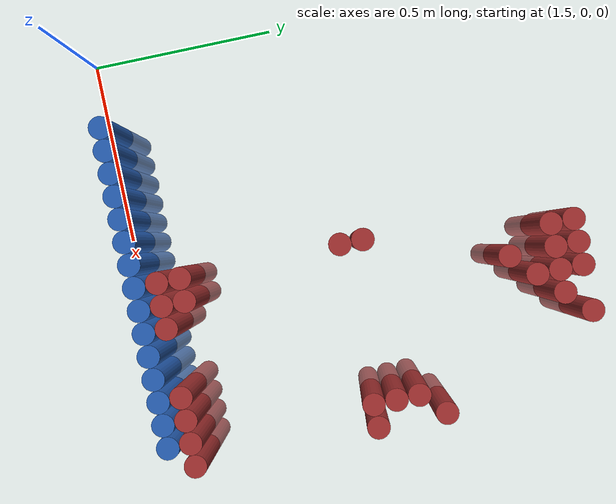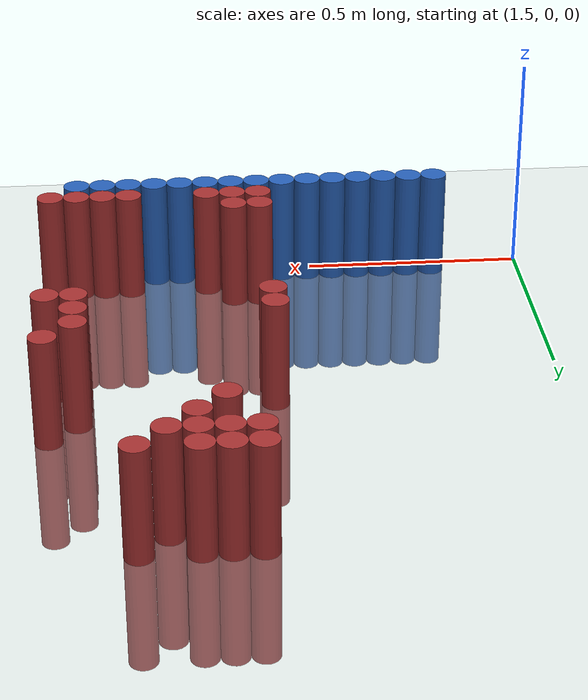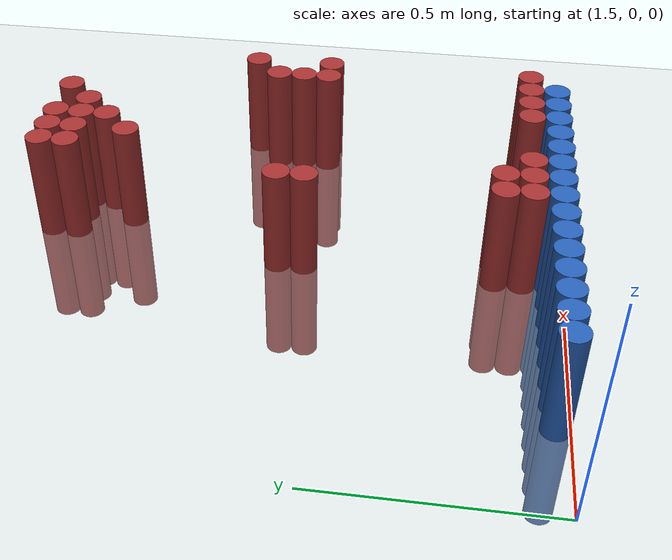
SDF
<sdf version="1.6">
 <world name="default">
  <model name="ground_plane">
   <static>1</static>
   <link name="link">
    <collision name="collision">
     <geometry><plane><normal>0 0 1</normal><size>100 100</size></plane></geometry>
     <surface><friction><ode><mu>100</mu><mu2>50</mu2></ode></friction></surface>
    </collision>
    <visual name="visual">
     <cast_shadows>0</cast_shadows>
     <geometry><plane><normal>0 0 1</normal><size>100 100</size></plane></geometry>
     <material>
      <script><uri>file://media/materials/scripts/gazebo.material</uri><name>Gazebo/Grey</name></script>
     </material>
    </visual>
   </link>
  </model>
  <model name="unit_cylinder_83">
   <static>1</static>
   <pose>1.710000 0.030000 0.000000 0.000000 0.000000 0.000000</pose>
   <link name="link">
    <inertial>
     <mass>1</mass>
     <inertia><ixx>0.145833</ixx><ixy>0</ixy><ixz>0</ixz><iyy>0.145833</iyy><iyz>0</iyz><izz>0.125</izz></inertia>
    </inertial>
    <collision name="collision">
     <geometry><cylinder><radius>0.030000</radius><length>0.5</length></cylinder></geometry>
    </collision>
    <visual name="visual">
     <geometry><cylinder><radius>0.030000</radius><length>0.5</length></cylinder></geometry>
     <material>
      <ambient>0.152000 0.379000 0.720000 1</ambient>
      <diffuse>0.152000 0.379000 0.720000 1</diffuse>
     </material>
     <material>
      <script><name>Gazebo/Grey</name><uri>file://media/materials/scripts/gazebo.material</uri></script>
     </material>
    </visual>
   </link>
  </model>
  <model name="unit_cylinder_85">
   <static>1</static>
   <pose>1.770000 0.030000 0.000000 0.000000 0.000000 0.000000</pose>
   <link name="link">
    <inertial>
     <mass>1</mass>
     <inertia><ixx>0.145833</ixx><ixy>0</ixy><ixz>0</ixz><iyy>0.145833</iyy><iyz>0</iyz><izz>0.125</izz></inertia>
    </inertial>
    <collision name="collision">
     <geometry><cylinder><radius>0.030000</radius><length>0.5</length></cylinder></geometry>
    </collision>
    <visual name="visual">
     <geometry><cylinder><radius>0.030000</radius><length>0.5</length></cylinder></geometry>
     <material>
      <ambient>0.152000 0.379000 0.720000 1</ambient>
      <diffuse>0.152000 0.379000 0.720000 1</diffuse>
     </material>
     <material>
      <script><name>Gazebo/Grey</name><uri>file://media/materials/scripts/gazebo.material</uri></script>
     </material>
    </visual>
   </link>
  </model>
  <model name="unit_cylinder_87">
   <static>1</static>
   <pose>1.830000 0.030000 0.000000 0.000000 0.000000 0.000000</pose>
   <link name="link">
    <inertial>
     <mass>1</mass>
     <inertia><ixx>0.145833</ixx><ixy>0</ixy><ixz>0</ixz><iyy>0.145833</iyy><iyz>0</iyz><izz>0.125</izz></inertia>
    </inertial>
    <collision name="collision">
     <geometry><cylinder><radius>0.030000</radius><length>0.5</length></cylinder></geometry>
    </collision>
    <visual name="visual">
     <geometry><cylinder><radius>0.030000</radius><length>0.5</length></cylinder></geometry>
     <material>
      <ambient>0.152000 0.379000 0.720000 1</ambient>
      <diffuse>0.152000 0.379000 0.720000 1</diffuse>
     </material>
     <material>
      <script><name>Gazebo/Grey</name><uri>file://media/materials/scripts/gazebo.material</uri></script>
     </material>
    </visual>
   </link>
  </model>
  <model name="unit_cylinder_89">
   <static>1</static>
   <pose>1.890000 0.030000 0.000000 0.000000 0.000000 0.000000</pose>
   <link name="link">
    <inertial>
     <mass>1</mass>
     <inertia><ixx>0.145833</ixx><ixy>0</ixy><ixz>0</ixz><iyy>0.145833</iyy><iyz>0</iyz><izz>0.125</izz></inertia>
    </inertial>
    <collision name="collision">
     <geometry><cylinder><radius>0.030000</radius><length>0.5</length></cylinder></geometry>
    </collision>
    <visual name="visual">
     <geometry><cylinder><radius>0.030000</radius><length>0.5</length></cylinder></geometry>
     <material>
      <ambient>0.152000 0.379000 0.720000 1</ambient>
      <diffuse>0.152000 0.379000 0.720000 1</diffuse>
     </material>
     <material>
      <script><name>Gazebo/Grey</name><uri>file://media/materials/scripts/gazebo.material</uri></script>
     </material>
    </visual>
   </link>
  </model>
  <model name="unit_cylinder_91">
   <static>1</static>
   <pose>1.950000 0.030000 0.000000 0.000000 0.000000 0.000000</pose>
   <link name="link">
    <inertial>
     <mass>1</mass>
     <inertia><ixx>0.145833</ixx><ixy>0</ixy><ixz>0</ixz><iyy>0.145833</iyy><iyz>0</iyz><izz>0.125</izz></inertia>
    </inertial>
    <collision name="collision">
     <geometry><cylinder><radius>0.030000</radius><length>0.5</length></cylinder></geometry>
    </collision>
    <visual name="visual">
     <geometry><cylinder><radius>0.030000</radius><length>0.5</length></cylinder></geometry>
     <material>
      <ambient>0.152000 0.379000 0.720000 1</ambient>
      <diffuse>0.152000 0.379000 0.720000 1</diffuse>
     </material>
     <material>
      <script><name>Gazebo/Grey</name><uri>file://media/materials/scripts/gazebo.material</uri></script>
     </material>
    </visual>
   </link>
  </model>
  <model name="unit_cylinder_93">
   <static>1</static>
   <pose>2.010000 0.030000 0.000000 0.000000 0.000000 0.000000</pose>
   <link name="link">
    <inertial>
     <mass>1</mass>
     <inertia><ixx>0.145833</ixx><ixy>0</ixy><ixz>0</ixz><iyy>0.145833</iyy><iyz>0</iyz><izz>0.125</izz></inertia>
    </inertial>
    <collision name="collision">
     <geometry><cylinder><radius>0.030000</radius><length>0.5</length></cylinder></geometry>
    </collision>
    <visual name="visual">
     <geometry><cylinder><radius>0.030000</radius><length>0.5</length></cylinder></geometry>
     <material>
      <ambient>0.152000 0.379000 0.720000 1</ambient>
      <diffuse>0.152000 0.379000 0.720000 1</diffuse>
     </material>
     <material>
      <script><name>Gazebo/Grey</name><uri>file://media/materials/scripts/gazebo.material</uri></script>
     </material>
    </visual>
   </link>
  </model>
  <model name="unit_cylinder_216">
   <static>1</static>
   <pose>2.190000 1.170000 0.000000 0.000000 0.000000 0.000000</pose>
   <link name="link">
    <inertial>
     <mass>1</mass>
     <inertia><ixx>0.145833</ixx><ixy>0</ixy><ixz>0</ixz><iyy>0.145833</iyy><iyz>0</iyz><izz>0.125</izz></inertia>
    </inertial>
    <collision name="collision">
     <geometry><cylinder><radius>0.030000</radius><length>0.5</length></cylinder></geometry>
    </collision>
    <visual name="visual">
     <geometry><cylinder><radius>0.030000</radius><length>0.5</length></cylinder></geometry>
     <material>
      <ambient>0.648000 0.192000 0.192000 1</ambient>
      <diffuse>0.648000 0.192000 0.192000 1</diffuse>
     </material>
     <material>
      <script><name>Gazebo/Grey</name><uri>file://media/materials/scripts/gazebo.material</uri></script>
     </material>
    </visual>
   </link>
  </model>
  <model name="unit_cylinder_217">
   <static>1</static>
   <pose>2.250000 1.170000 0.000000 0.000000 0.000000 0.000000</pose>
   <link name="link">
    <inertial>
     <mass>1</mass>
     <inertia><ixx>0.145833</ixx><ixy>0</ixy><ixz>0</ixz><iyy>0.145833</iyy><iyz>0</iyz><izz>0.125</izz></inertia>
    </inertial>
    <collision name="collision">
     <geometry><cylinder><radius>0.030000</radius><length>0.5</length></cylinder></geometry>
    </collision>
    <visual name="visual">
     <geometry><cylinder><radius>0.030000</radius><length>0.5</length></cylinder></geometry>
     <material>
      <ambient>0.648000 0.192000 0.192000 1</ambient>
      <diffuse>0.648000 0.192000 0.192000 1</diffuse>
     </material>
     <material>
      <script><name>Gazebo/Grey</name><uri>file://media/materials/scripts/gazebo.material</uri></script>
     </material>
    </visual>
   </link>
  </model>
  <model name="unit_cylinder_218">
   <static>1</static>
   <pose>2.310000 1.170000 0.000000 0.000000 0.000000 0.000000</pose>
   <link name="link">
    <inertial>
     <mass>1</mass>
     <inertia><ixx>0.145833</ixx><ixy>0</ixy><ixz>0</ixz><iyy>0.145833</iyy><iyz>0</iyz><izz>0.125</izz></inertia>
    </inertial>
    <collision name="collision">
     <geometry><cylinder><radius>0.030000</radius><length>0.5</length></cylinder></geometry>
    </collision>
    <visual name="visual">
     <geometry><cylinder><radius>0.030000</radius><length>0.5</length></cylinder></geometry>
     <material>
      <ambient>0.648000 0.192000 0.192000 1</ambient>
      <diffuse>0.648000 0.192000 0.192000 1</diffuse>
     </material>
     <material>
      <script><name>Gazebo/Grey</name><uri>file://media/materials/scripts/gazebo.material</uri></script>
     </material>
    </visual>
   </link>
  </model>
  <model name="unit_cylinder_219">
   <static>1</static>
   <pose>2.430000 1.170000 0.000000 0.000000 0.000000 0.000000</pose>
   <link name="link">
    <inertial>
     <mass>1</mass>
     <inertia><ixx>0.145833</ixx><ixy>0</ixy><ixz>0</ixz><iyy>0.145833</iyy><iyz>0</iyz><izz>0.125</izz></inertia>
    </inertial>
    <collision name="collision">
     <geometry><cylinder><radius>0.030000</radius><length>0.5</length></cylinder></geometry>
    </collision>
    <visual name="visual">
     <geometry><cylinder><radius>0.030000</radius><length>0.5</length></cylinder></geometry>
     <material>
      <ambient>0.648000 0.192000 0.192000 1</ambient>
      <diffuse>0.648000 0.192000 0.192000 1</diffuse>
     </material>
     <material>
      <script><name>Gazebo/Grey</name><uri>file://media/materials/scripts/gazebo.material</uri></script>
     </material>
    </visual>
   </link>
  </model>
  <model name="unit_cylinder_223">
   <static>1</static>
   <pose>2.190000 1.110000 0.000000 0.000000 0.000000 0.000000</pose>
   <link name="link">
    <inertial>
     <mass>1</mass>
     <inertia><ixx>0.145833</ixx><ixy>0</ixy><ixz>0</ixz><iyy>0.145833</iyy><iyz>0</iyz><izz>0.125</izz></inertia>
    </inertial>
    <collision name="collision">
     <geometry><cylinder><radius>0.030000</radius><length>0.5</length></cylinder></geometry>
    </collision>
    <visual name="visual">
     <geometry><cylinder><radius>0.030000</radius><length>0.5</length></cylinder></geometry>
     <material>
      <ambient>0.648000 0.192000 0.192000 1</ambient>
      <diffuse>0.648000 0.192000 0.192000 1</diffuse>
     </material>
     <material>
      <script><name>Gazebo/Grey</name><uri>file://media/materials/scripts/gazebo.material</uri></script>
     </material>
    </visual>
   </link>
  </model>
  <model name="unit_cylinder_224">
   <static>1</static>
   <pose>2.250000 1.110000 0.000000 0.000000 0.000000 0.000000</pose>
   <link name="link">
    <inertial>
     <mass>1</mass>
     <inertia><ixx>0.145833</ixx><ixy>0</ixy><ixz>0</ixz><iyy>0.145833</iyy><iyz>0</iyz><izz>0.125</izz></inertia>
    </inertial>
    <collision name="collision">
     <geometry><cylinder><radius>0.030000</radius><length>0.5</length></cylinder></geometry>
    </collision>
    <visual name="visual">
     <geometry><cylinder><radius>0.030000</radius><length>0.5</length></cylinder></geometry>
     <material>
      <ambient>0.648000 0.192000 0.192000 1</ambient>
      <diffuse>0.648000 0.192000 0.192000 1</diffuse>
     </material>
     <material>
      <script><name>Gazebo/Grey</name><uri>file://media/materials/scripts/gazebo.material</uri></script>
     </material>
    </visual>
   </link>
  </model>
  <model name="unit_cylinder_225">
   <static>1</static>
   <pose>2.310000 1.110000 0.000000 0.000000 0.000000 0.000000</pose>
   <link name="link">
    <inertial>
     <mass>1</mass>
     <inertia><ixx>0.145833</ixx><ixy>0</ixy><ixz>0</ixz><iyy>0.145833</iyy><iyz>0</iyz><izz>0.125</izz></inertia>
    </inertial>
    <collision name="collision">
     <geometry><cylinder><radius>0.030000</radius><length>0.5</length></cylinder></geometry>
    </collision>
    <visual name="visual">
     <geometry><cylinder><radius>0.030000</radius><length>0.5</length></cylinder></geometry>
     <material>
      <ambient>0.648000 0.192000 0.192000 1</ambient>
      <diffuse>0.648000 0.192000 0.192000 1</diffuse>
     </material>
     <material>
      <script><name>Gazebo/Grey</name><uri>file://media/materials/scripts/gazebo.material</uri></script>
     </material>
    </visual>
   </link>
  </model>
  <model name="unit_cylinder_226">
   <static>1</static>
   <pose>2.370000 1.110000 0.000000 0.000000 0.000000 0.000000</pose>
   <link name="link">
    <inertial>
     <mass>1</mass>
     <inertia><ixx>0.145833</ixx><ixy>0</ixy><ixz>0</ixz><iyy>0.145833</iyy><iyz>0</iyz><izz>0.125</izz></inertia>
    </inertial>
    <collision name="collision">
     <geometry><cylinder><radius>0.030000</radius><length>0.5</length></cylinder></geometry>
    </collision>
    <visual name="visual">
     <geometry><cylinder><radius>0.030000</radius><length>0.5</length></cylinder></geometry>
     <material>
      <ambient>0.648000 0.192000 0.192000 1</ambient>
      <diffuse>0.648000 0.192000 0.192000 1</diffuse>
     </material>
     <material>
      <script><name>Gazebo/Grey</name><uri>file://media/materials/scripts/gazebo.material</uri></script>
     </material>
    </visual>
   </link>
  </model>
  <model name="unit_cylinder_227">
   <static>1</static>
   <pose>2.310000 1.050000 0.000000 0.000000 0.000000 0.000000</pose>
   <link name="link">
    <inertial>
     <mass>1</mass>
     <inertia><ixx>0.145833</ixx><ixy>0</ixy><ixz>0</ixz><iyy>0.145833</iyy><iyz>0</iyz><izz>0.125</izz></inertia>
    </inertial>
    <collision name="collision">
     <geometry><cylinder><radius>0.030000</radius><length>0.5</length></cylinder></geometry>
    </collision>
    <visual name="visual">
     <geometry><cylinder><radius>0.030000</radius><length>0.5</length></cylinder></geometry>
     <material>
      <ambient>0.648000 0.192000 0.192000 1</ambient>
      <diffuse>0.648000 0.192000 0.192000 1</diffuse>
     </material>
     <material>
      <script><name>Gazebo/Grey</name><uri>file://media/materials/scripts/gazebo.material</uri></script>
     </material>
    </visual>
   </link>
  </model>
  <model name="unit_cylinder_230">
   <static>1</static>
   <pose>2.250000 0.990000 0.000000 0.000000 0.000000 0.000000</pose>
   <link name="link">
    <inertial>
     <mass>1</mass>
     <inertia><ixx>0.145833</ixx><ixy>0</ixy><ixz>0</ixz><iyy>0.145833</iyy><iyz>0</iyz><izz>0.125</izz></inertia>
    </inertial>
    <collision name="collision">
     <geometry><cylinder><radius>0.030000</radius><length>0.5</length></cylinder></geometry>
    </collision>
    <visual name="visual">
     <geometry><cylinder><radius>0.030000</radius><length>0.5</length></cylinder></geometry>
     <material>
      <ambient>0.648000 0.192000 0.192000 1</ambient>
      <diffuse>0.648000 0.192000 0.192000 1</diffuse>
     </material>
     <material>
      <script><name>Gazebo/Grey</name><uri>file://media/materials/scripts/gazebo.material</uri></script>
     </material>
    </visual>
   </link>
  </model>
  <model name="unit_cylinder_239">
   <static>1</static>
   <pose>2.610000 0.750000 0.000000 0.000000 0.000000 0.000000</pose>
   <link name="link">
    <inertial>
     <mass>1</mass>
     <inertia><ixx>0.145833</ixx><ixy>0</ixy><ixz>0</ixz><iyy>0.145833</iyy><iyz>0</iyz><izz>0.125</izz></inertia>
    </inertial>
    <collision name="collision">
     <geometry><cylinder><radius>0.030000</radius><length>0.5</length></cylinder></geometry>
    </collision>
    <visual name="visual">
     <geometry><cylinder><radius>0.030000</radius><length>0.5</length></cylinder></geometry>
     <material>
      <ambient>0.648000 0.192000 0.192000 1</ambient>
      <diffuse>0.648000 0.192000 0.192000 1</diffuse>
     </material>
     <material>
      <script><name>Gazebo/Grey</name><uri>file://media/materials/scripts/gazebo.material</uri></script>
     </material>
    </visual>
   </link>
  </model>
  <model name="unit_cylinder_241">
   <static>1</static>
   <pose>2.550000 0.690000 0.000000 0.000000 0.000000 0.000000</pose>
   <link name="link">
    <inertial>
     <mass>1</mass>
     <inertia><ixx>0.145833</ixx><ixy>0</ixy><ixz>0</ixz><iyy>0.145833</iyy><iyz>0</iyz><izz>0.125</izz></inertia>
    </inertial>
    <collision name="collision">
     <geometry><cylinder><radius>0.030000</radius><length>0.5</length></cylinder></geometry>
    </collision>
    <visual name="visual">
     <geometry><cylinder><radius>0.030000</radius><length>0.5</length></cylinder></geometry>
     <material>
      <ambient>0.648000 0.192000 0.192000 1</ambient>
      <diffuse>0.648000 0.192000 0.192000 1</diffuse>
     </material>
     <material>
      <script><name>Gazebo/Grey</name><uri>file://media/materials/scripts/gazebo.material</uri></script>
     </material>
    </visual>
   </link>
  </model>
  <model name="unit_cylinder_242">
   <static>1</static>
   <pose>2.130000 0.630000 0.000000 0.000000 0.000000 0.000000</pose>
   <link name="link">
    <inertial>
     <mass>1</mass>
     <inertia><ixx>0.145833</ixx><ixy>0</ixy><ixz>0</ixz><iyy>0.145833</iyy><iyz>0</iyz><izz>0.125</izz></inertia>
    </inertial>
    <collision name="collision">
     <geometry><cylinder><radius>0.030000</radius><length>0.5</length></cylinder></geometry>
    </collision>
    <visual name="visual">
     <geometry><cylinder><radius>0.030000</radius><length>0.5</length></cylinder></geometry>
     <material>
      <ambient>0.648000 0.192000 0.192000 1</ambient>
      <diffuse>0.648000 0.192000 0.192000 1</diffuse>
     </material>
     <material>
      <script><name>Gazebo/Grey</name><uri>file://media/materials/scripts/gazebo.material</uri></script>
     </material>
    </visual>
   </link>
  </model>
  <model name="unit_cylinder_243">
   <static>1</static>
   <pose>2.550000 0.630000 0.000000 0.000000 0.000000 0.000000</pose>
   <link name="link">
    <inertial>
     <mass>1</mass>
     <inertia><ixx>0.145833</ixx><ixy>0</ixy><ixz>0</ixz><iyy>0.145833</iyy><iyz>0</iyz><izz>0.125</izz></inertia>
    </inertial>
    <collision name="collision">
     <geometry><cylinder><radius>0.030000</radius><length>0.5</length></cylinder></geometry>
    </collision>
    <visual name="visual">
     <geometry><cylinder><radius>0.030000</radius><length>0.5</length></cylinder></geometry>
     <material>
      <ambient>0.648000 0.192000 0.192000 1</ambient>
      <diffuse>0.648000 0.192000 0.192000 1</diffuse>
     </material>
     <material>
      <script><name>Gazebo/Grey</name><uri>file://media/materials/scripts/gazebo.material</uri></script>
     </material>
    </visual>
   </link>
  </model>
  <model name="unit_cylinder_244">
   <static>1</static>
   <pose>2.130000 0.570000 0.000000 0.000000 0.000000 0.000000</pose>
   <link name="link">
    <inertial>
     <mass>1</mass>
     <inertia><ixx>0.145833</ixx><ixy>0</ixy><ixz>0</ixz><iyy>0.145833</iyy><iyz>0</iyz><izz>0.125</izz></inertia>
    </inertial>
    <collision name="collision">
     <geometry><cylinder><radius>0.030000</radius><length>0.5</length></cylinder></geometry>
    </collision>
    <visual name="visual">
     <geometry><cylinder><radius>0.030000</radius><length>0.5</length></cylinder></geometry>
     <material>
      <ambient>0.648000 0.192000 0.192000 1</ambient>
      <diffuse>0.648000 0.192000 0.192000 1</diffuse>
     </material>
     <material>
      <script><name>Gazebo/Grey</name><uri>file://media/materials/scripts/gazebo.material</uri></script>
     </material>
    </visual>
   </link>
  </model>
  <model name="unit_cylinder_245">
   <static>1</static>
   <pose>2.550000 0.570000 0.000000 0.000000 0.000000 0.000000</pose>
   <link name="link">
    <inertial>
     <mass>1</mass>
     <inertia><ixx>0.145833</ixx><ixy>0</ixy><ixz>0</ixz><iyy>0.145833</iyy><iyz>0</iyz><izz>0.125</izz></inertia>
    </inertial>
    <collision name="collision">
     <geometry><cylinder><radius>0.030000</radius><length>0.5</length></cylinder></geometry>
    </collision>
    <visual name="visual">
     <geometry><cylinder><radius>0.030000</radius><length>0.5</length></cylinder></geometry>
     <material>
      <ambient>0.648000 0.192000 0.192000 1</ambient>
      <diffuse>0.648000 0.192000 0.192000 1</diffuse>
     </material>
     <material>
      <script><name>Gazebo/Grey</name><uri>file://media/materials/scripts/gazebo.material</uri></script>
     </material>
    </visual>
   </link>
  </model>
  <model name="unit_cylinder_246">
   <static>1</static>
   <pose>2.610000 0.570000 0.000000 0.000000 0.000000 0.000000</pose>
   <link name="link">
    <inertial>
     <mass>1</mass>
     <inertia><ixx>0.145833</ixx><ixy>0</ixy><ixz>0</ixz><iyy>0.145833</iyy><iyz>0</iyz><izz>0.125</izz></inertia>
    </inertial>
    <collision name="collision">
     <geometry><cylinder><radius>0.030000</radius><length>0.5</length></cylinder></geometry>
    </collision>
    <visual name="visual">
     <geometry><cylinder><radius>0.030000</radius><length>0.5</length></cylinder></geometry>
     <material>
      <ambient>0.648000 0.192000 0.192000 1</ambient>
      <diffuse>0.648000 0.192000 0.192000 1</diffuse>
     </material>
     <material>
      <script><name>Gazebo/Grey</name><uri>file://media/materials/scripts/gazebo.material</uri></script>
     </material>
    </visual>
   </link>
  </model>
  <model name="unit_cylinder_270">
   <static>1</static>
   <pose>2.130000 0.150000 0.000000 0.000000 0.000000 0.000000</pose>
   <link name="link">
    <inertial>
     <mass>1</mass>
     <inertia><ixx>0.145833</ixx><ixy>0</ixy><ixz>0</ixz><iyy>0.145833</iyy><iyz>0</iyz><izz>0.125</izz></inertia>
    </inertial>
    <collision name="collision">
     <geometry><cylinder><radius>0.030000</radius><length>0.5</length></cylinder></geometry>
    </collision>
    <visual name="visual">
     <geometry><cylinder><radius>0.030000</radius><length>0.5</length></cylinder></geometry>
     <material>
      <ambient>0.648000 0.192000 0.192000 1</ambient>
      <diffuse>0.648000 0.192000 0.192000 1</diffuse>
     </material>
     <material>
      <script><name>Gazebo/Grey</name><uri>file://media/materials/scripts/gazebo.material</uri></script>
     </material>
    </visual>
   </link>
  </model>
  <model name="unit_cylinder_271">
   <static>1</static>
   <pose>2.190000 0.150000 0.000000 0.000000 0.000000 0.000000</pose>
   <link name="link">
    <inertial>
     <mass>1</mass>
     <inertia><ixx>0.145833</ixx><ixy>0</ixy><ixz>0</ixz><iyy>0.145833</iyy><iyz>0</iyz><izz>0.125</izz></inertia>
    </inertial>
    <collision name="collision">
     <geometry><cylinder><radius>0.030000</radius><length>0.5</length></cylinder></geometry>
    </collision>
    <visual name="visual">
     <geometry><cylinder><radius>0.030000</radius><length>0.5</length></cylinder></geometry>
     <material>
      <ambient>0.648000 0.192000 0.192000 1</ambient>
      <diffuse>0.648000 0.192000 0.192000 1</diffuse>
     </material>
     <material>
      <script><name>Gazebo/Grey</name><uri>file://media/materials/scripts/gazebo.material</uri></script>
     </material>
    </visual>
   </link>
  </model>
  <model name="unit_cylinder_282">
   <static>1</static>
   <pose>2.130000 0.090000 0.000000 0.000000 0.000000 0.000000</pose>
   <link name="link">
    <inertial>
     <mass>1</mass>
     <inertia><ixx>0.145833</ixx><ixy>0</ixy><ixz>0</ixz><iyy>0.145833</iyy><iyz>0</iyz><izz>0.125</izz></inertia>
    </inertial>
    <collision name="collision">
     <geometry><cylinder><radius>0.030000</radius><length>0.5</length></cylinder></geometry>
    </collision>
    <visual name="visual">
     <geometry><cylinder><radius>0.030000</radius><length>0.5</length></cylinder></geometry>
     <material>
      <ambient>0.648000 0.192000 0.192000 1</ambient>
      <diffuse>0.648000 0.192000 0.192000 1</diffuse>
     </material>
     <material>
      <script><name>Gazebo/Grey</name><uri>file://media/materials/scripts/gazebo.material</uri></script>
     </material>
    </visual>
   </link>
  </model>
  <model name="unit_cylinder_283">
   <static>1</static>
   <pose>2.190000 0.090000 0.000000 0.000000 0.000000 0.000000</pose>
   <link name="link">
    <inertial>
     <mass>1</mass>
     <inertia><ixx>0.145833</ixx><ixy>0</ixy><ixz>0</ixz><iyy>0.145833</iyy><iyz>0</iyz><izz>0.125</izz></inertia>
    </inertial>
    <collision name="collision">
     <geometry><cylinder><radius>0.030000</radius><length>0.5</length></cylinder></geometry>
    </collision>
    <visual name="visual">
     <geometry><cylinder><radius>0.030000</radius><length>0.5</length></cylinder></geometry>
     <material>
      <ambient>0.648000 0.192000 0.192000 1</ambient>
      <diffuse>0.648000 0.192000 0.192000 1</diffuse>
     </material>
     <material>
      <script><name>Gazebo/Grey</name><uri>file://media/materials/scripts/gazebo.material</uri></script>
     </material>
    </visual>
   </link>
  </model>
  <model name="unit_cylinder_284">
   <static>1</static>
   <pose>2.250000 0.090000 0.000000 0.000000 0.000000 0.000000</pose>
   <link name="link">
    <inertial>
     <mass>1</mass>
     <inertia><ixx>0.145833</ixx><ixy>0</ixy><ixz>0</ixz><iyy>0.145833</iyy><iyz>0</iyz><izz>0.125</izz></inertia>
    </inertial>
    <collision name="collision">
     <geometry><cylinder><radius>0.030000</radius><length>0.5</length></cylinder></geometry>
    </collision>
    <visual name="visual">
     <geometry><cylinder><radius>0.030000</radius><length>0.5</length></cylinder></geometry>
     <material>
      <ambient>0.648000 0.192000 0.192000 1</ambient>
      <diffuse>0.648000 0.192000 0.192000 1</diffuse>
     </material>
     <material>
      <script><name>Gazebo/Grey</name><uri>file://media/materials/scripts/gazebo.material</uri></script>
     </material>
    </visual>
   </link>
  </model>
  <model name="unit_cylinder_285">
   <static>1</static>
   <pose>2.430000 0.090000 0.000000 0.000000 0.000000 0.000000</pose>
   <link name="link">
    <inertial>
     <mass>1</mass>
     <inertia><ixx>0.145833</ixx><ixy>0</ixy><ixz>0</ixz><iyy>0.145833</iyy><iyz>0</iyz><izz>0.125</izz></inertia>
    </inertial>
    <collision name="collision">
     <geometry><cylinder><radius>0.030000</radius><length>0.5</length></cylinder></geometry>
    </collision>
    <visual name="visual">
     <geometry><cylinder><radius>0.030000</radius><length>0.5</length></cylinder></geometry>
     <material>
      <ambient>0.648000 0.192000 0.192000 1</ambient>
      <diffuse>0.648000 0.192000 0.192000 1</diffuse>
     </material>
     <material>
      <script><name>Gazebo/Grey</name><uri>file://media/materials/scripts/gazebo.material</uri></script>
     </material>
    </visual>
   </link>
  </model>
  <model name="unit_cylinder_286">
   <static>1</static>
   <pose>2.490000 0.090000 0.000000 0.000000 0.000000 0.000000</pose>
   <link name="link">
    <inertial>
     <mass>1</mass>
     <inertia><ixx>0.145833</ixx><ixy>0</ixy><ixz>0</ixz><iyy>0.145833</iyy><iyz>0</iyz><izz>0.125</izz></inertia>
    </inertial>
    <collision name="collision">
     <geometry><cylinder><radius>0.030000</radius><length>0.5</length></cylinder></geometry>
    </collision>
    <visual name="visual">
     <geometry><cylinder><radius>0.030000</radius><length>0.5</length></cylinder></geometry>
     <material>
      <ambient>0.648000 0.192000 0.192000 1</ambient>
      <diffuse>0.648000 0.192000 0.192000 1</diffuse>
     </material>
     <material>
      <script><name>Gazebo/Grey</name><uri>file://media/materials/scripts/gazebo.material</uri></script>
     </material>
    </visual>
   </link>
  </model>
  <model name="unit_cylinder_287">
   <static>1</static>
   <pose>2.550000 0.090000 0.000000 0.000000 0.000000 0.000000</pose>
   <link name="link">
    <inertial>
     <mass>1</mass>
     <inertia><ixx>0.145833</ixx><ixy>0</ixy><ixz>0</ixz><iyy>0.145833</iyy><iyz>0</iyz><izz>0.125</izz></inertia>
    </inertial>
    <collision name="collision">
     <geometry><cylinder><radius>0.030000</radius><length>0.5</length></cylinder></geometry>
    </collision>
    <visual name="visual">
     <geometry><cylinder><radius>0.030000</radius><length>0.5</length></cylinder></geometry>
     <material>
      <ambient>0.648000 0.192000 0.192000 1</ambient>
      <diffuse>0.648000 0.192000 0.192000 1</diffuse>
     </material>
     <material>
      <script><name>Gazebo/Grey</name><uri>file://media/materials/scripts/gazebo.material</uri></script>
     </material>
    </visual>
   </link>
  </model>
  <model name="unit_cylinder_288">
   <static>1</static>
   <pose>2.610000 0.090000 0.000000 0.000000 0.000000 0.000000</pose>
   <link name="link">
    <inertial>
     <mass>1</mass>
     <inertia><ixx>0.145833</ixx><ixy>0</ixy><ixz>0</ixz><iyy>0.145833</iyy><iyz>0</iyz><izz>0.125</izz></inertia>
    </inertial>
    <collision name="collision">
     <geometry><cylinder><radius>0.030000</radius><length>0.5</length></cylinder></geometry>
    </collision>
    <visual name="visual">
     <geometry><cylinder><radius>0.030000</radius><length>0.5</length></cylinder></geometry>
     <material>
      <ambient>0.648000 0.192000 0.192000 1</ambient>
      <diffuse>0.648000 0.192000 0.192000 1</diffuse>
     </material>
     <material>
      <script><name>Gazebo/Grey</name><uri>file://media/materials/scripts/gazebo.material</uri></script>
     </material>
    </visual>
   </link>
  </model>
  <model name="unit_cylinder_297">
   <static>1</static>
   <pose>2.070000 0.030000 0.000000 0.000000 0.000000 0.000000</pose>
   <link name="link">
    <inertial>
     <mass>1</mass>
     <inertia><ixx>0.145833</ixx><ixy>0</ixy><ixz>0</ixz><iyy>0.145833</iyy><iyz>0</iyz><izz>0.125</izz></inertia>
    </inertial>
    <collision name="collision">
     <geometry><cylinder><radius>0.030000</radius><length>0.5</length></cylinder></geometry>
    </collision>
    <visual name="visual">
     <geometry><cylinder><radius>0.030000</radius><length>0.5</length></cylinder></geometry>
     <material>
      <ambient>0.152000 0.379000 0.720000 1</ambient>
      <diffuse>0.152000 0.379000 0.720000 1</diffuse>
     </material>
     <material>
      <script><name>Gazebo/Grey</name><uri>file://media/materials/scripts/gazebo.material</uri></script>
     </material>
    </visual>
   </link>
  </model>
  <model name="unit_cylinder_298">
   <static>1</static>
   <pose>2.130000 0.030000 0.000000 0.000000 0.000000 0.000000</pose>
   <link name="link">
    <inertial>
     <mass>1</mass>
     <inertia><ixx>0.145833</ixx><ixy>0</ixy><ixz>0</ixz><iyy>0.145833</iyy><iyz>0</iyz><izz>0.125</izz></inertia>
    </inertial>
    <collision name="collision">
     <geometry><cylinder><radius>0.030000</radius><length>0.5</length></cylinder></geometry>
    </collision>
    <visual name="visual">
     <geometry><cylinder><radius>0.030000</radius><length>0.5</length></cylinder></geometry>
     <material>
      <ambient>0.152000 0.379000 0.720000 1</ambient>
      <diffuse>0.152000 0.379000 0.720000 1</diffuse>
     </material>
     <material>
      <script><name>Gazebo/Grey</name><uri>file://media/materials/scripts/gazebo.material</uri></script>
     </material>
    </visual>
   </link>
  </model>
  <model name="unit_cylinder_299">
   <static>1</static>
   <pose>2.190000 0.030000 0.000000 0.000000 0.000000 0.000000</pose>
   <link name="link">
    <inertial>
     <mass>1</mass>
     <inertia><ixx>0.145833</ixx><ixy>0</ixy><ixz>0</ixz><iyy>0.145833</iyy><iyz>0</iyz><izz>0.125</izz></inertia>
    </inertial>
    <collision name="collision">
     <geometry><cylinder><radius>0.030000</radius><length>0.5</length></cylinder></geometry>
    </collision>
    <visual name="visual">
     <geometry><cylinder><radius>0.030000</radius><length>0.5</length></cylinder></geometry>
     <material>
      <ambient>0.152000 0.379000 0.720000 1</ambient>
      <diffuse>0.152000 0.379000 0.720000 1</diffuse>
     </material>
     <material>
      <script><name>Gazebo/Grey</name><uri>file://media/materials/scripts/gazebo.material</uri></script>
     </material>
    </visual>
   </link>
  </model>
  <model name="unit_cylinder_300">
   <static>1</static>
   <pose>2.250000 0.030000 0.000000 0.000000 0.000000 0.000000</pose>
   <link name="link">
    <inertial>
     <mass>1</mass>
     <inertia><ixx>0.145833</ixx><ixy>0</ixy><ixz>0</ixz><iyy>0.145833</iyy><iyz>0</iyz><izz>0.125</izz></inertia>
    </inertial>
    <collision name="collision">
     <geometry><cylinder><radius>0.030000</radius><length>0.5</length></cylinder></geometry>
    </collision>
    <visual name="visual">
     <geometry><cylinder><radius>0.030000</radius><length>0.5</length></cylinder></geometry>
     <material>
      <ambient>0.152000 0.379000 0.720000 1</ambient>
      <diffuse>0.152000 0.379000 0.720000 1</diffuse>
     </material>
     <material>
      <script><name>Gazebo/Grey</name><uri>file://media/materials/scripts/gazebo.material</uri></script>
     </material>
    </visual>
   </link>
  </model>
  <model name="unit_cylinder_301">
   <static>1</static>
   <pose>2.310000 0.030000 0.000000 0.000000 0.000000 0.000000</pose>
   <link name="link">
    <inertial>
     <mass>1</mass>
     <inertia><ixx>0.145833</ixx><ixy>0</ixy><ixz>0</ixz><iyy>0.145833</iyy><iyz>0</iyz><izz>0.125</izz></inertia>
    </inertial>
    <collision name="collision">
     <geometry><cylinder><radius>0.030000</radius><length>0.5</length></cylinder></geometry>
    </collision>
    <visual name="visual">
     <geometry><cylinder><radius>0.030000</radius><length>0.5</length></cylinder></geometry>
     <material>
      <ambient>0.152000 0.379000 0.720000 1</ambient>
      <diffuse>0.152000 0.379000 0.720000 1</diffuse>
     </material>
     <material>
      <script><name>Gazebo/Grey</name><uri>file://media/materials/scripts/gazebo.material</uri></script>
     </material>
    </visual>
   </link>
  </model>
  <model name="unit_cylinder_302">
   <static>1</static>
   <pose>2.370000 0.030000 0.000000 0.000000 0.000000 0.000000</pose>
   <link name="link">
    <inertial>
     <mass>1</mass>
     <inertia><ixx>0.145833</ixx><ixy>0</ixy><ixz>0</ixz><iyy>0.145833</iyy><iyz>0</iyz><izz>0.125</izz></inertia>
    </inertial>
    <collision name="collision">
     <geometry><cylinder><radius>0.030000</radius><length>0.5</length></cylinder></geometry>
    </collision>
    <visual name="visual">
     <geometry><cylinder><radius>0.030000</radius><length>0.5</length></cylinder></geometry>
     <material>
      <ambient>0.152000 0.379000 0.720000 1</ambient>
      <diffuse>0.152000 0.379000 0.720000 1</diffuse>
     </material>
     <material>
      <script><name>Gazebo/Grey</name><uri>file://media/materials/scripts/gazebo.material</uri></script>
     </material>
    </visual>
   </link>
  </model>
  <model name="unit_cylinder_303">
   <static>1</static>
   <pose>2.430000 0.030000 0.000000 0.000000 0.000000 0.000000</pose>
   <link name="link">
    <inertial>
     <mass>1</mass>
     <inertia><ixx>0.145833</ixx><ixy>0</ixy><ixz>0</ixz><iyy>0.145833</iyy><iyz>0</iyz><izz>0.125</izz></inertia>
    </inertial>
    <collision name="collision">
     <geometry><cylinder><radius>0.030000</radius><length>0.5</length></cylinder></geometry>
    </collision>
    <visual name="visual">
     <geometry><cylinder><radius>0.030000</radius><length>0.5</length></cylinder></geometry>
     <material>
      <ambient>0.152000 0.379000 0.720000 1</ambient>
      <diffuse>0.152000 0.379000 0.720000 1</diffuse>
     </material>
     <material>
      <script><name>Gazebo/Grey</name><uri>file://media/materials/scripts/gazebo.material</uri></script>
     </material>
    </visual>
   </link>
  </model>
  <model name="unit_cylinder_304">
   <static>1</static>
   <pose>2.490000 0.030000 0.000000 0.000000 0.000000 0.000000</pose>
   <link name="link">
    <inertial>
     <mass>1</mass>
     <inertia><ixx>0.145833</ixx><ixy>0</ixy><ixz>0</ixz><iyy>0.145833</iyy><iyz>0</iyz><izz>0.125</izz></inertia>
    </inertial>
    <collision name="collision">
     <geometry><cylinder><radius>0.030000</radius><length>0.5</length></cylinder></geometry>
    </collision>
    <visual name="visual">
     <geometry><cylinder><radius>0.030000</radius><length>0.5</length></cylinder></geometry>
     <material>
      <ambient>0.152000 0.379000 0.720000 1</ambient>
      <diffuse>0.152000 0.379000 0.720000 1</diffuse>
     </material>
     <material>
      <script><name>Gazebo/Grey</name><uri>file://media/materials/scripts/gazebo.material</uri></script>
     </material>
    </visual>
   </link>
  </model>
  <model name="unit_cylinder_305">
   <static>1</static>
   <pose>2.550000 0.030000 0.000000 0.000000 0.000000 0.000000</pose>
   <link name="link">
    <inertial>
     <mass>1</mass>
     <inertia><ixx>0.145833</ixx><ixy>0</ixy><ixz>0</ixz><iyy>0.145833</iyy><iyz>0</iyz><izz>0.125</izz></inertia>
    </inertial>
    <collision name="collision">
     <geometry><cylinder><radius>0.030000</radius><length>0.5</length></cylinder></geometry>
    </collision>
    <visual name="visual">
     <geometry><cylinder><radius>0.030000</radius><length>0.5</length></cylinder></geometry>
     <material>
      <ambient>0.152000 0.379000 0.720000 1</ambient>
      <diffuse>0.152000 0.379000 0.720000 1</diffuse>
     </material>
     <material>
      <script><name>Gazebo/Grey</name><uri>file://media/materials/scripts/gazebo.material</uri></script>
     </material>
    </visual>
   </link>
  </model>
 </world>
</sdf>
